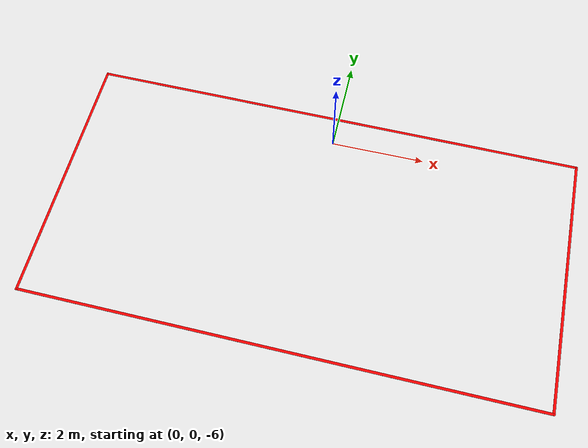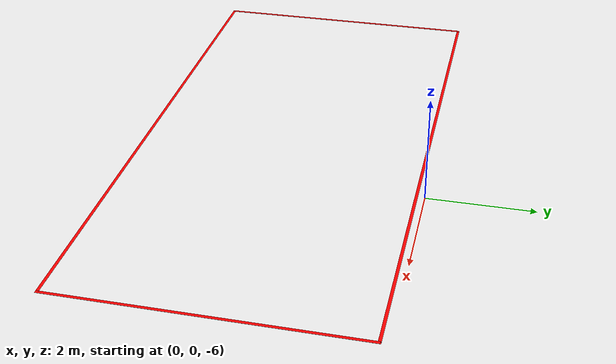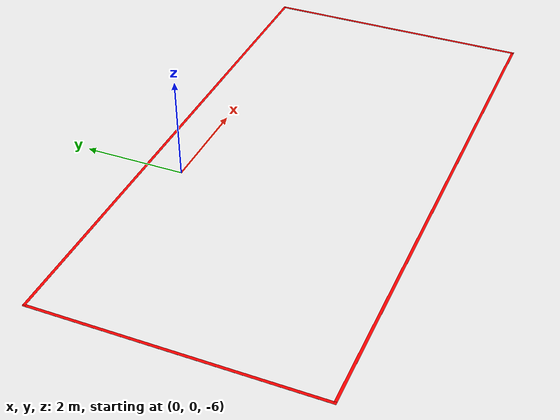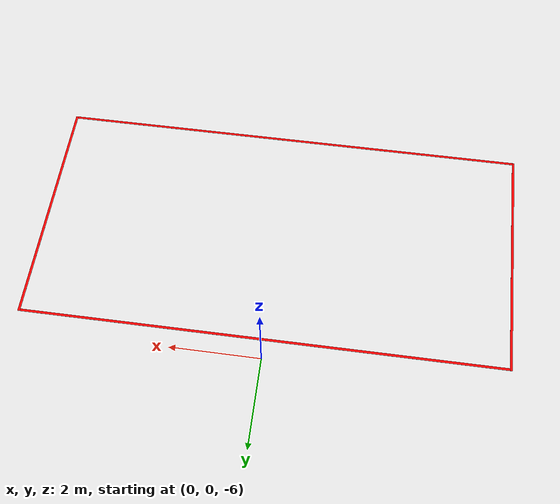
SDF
<?xml version='1.0' encoding='UTF-8'?>
<sdf version="1.6">
  <model name="line_rectangle">
    <static>true</static>
    <link name="rectangle_link">

    <visual name="line_1">
      <cast_shadows>false</cast_shadows>
      <pose>0 0 -5 0 0 0</pose>
      <geometry>
        <box>
          <size>10 0.05 .001</size>
        </box>
      </geometry>
      <material>
        <ambient>1 0 0 1</ambient>
        <diffuse>1 0 0 1</diffuse>
        <specular>0.1 0.1 0.1 1</specular>
      </material>
    </visual>

    <visual name="line_2">
      <cast_shadows>false</cast_shadows>
      <pose>5 -2.5 -5 0 0 0</pose>
      <geometry>
        <box>
          <size>0.05 5.05 .001</size>
        </box>
      </geometry>
      <material>
        <ambient>1 0 0 1</ambient>
        <diffuse>1 0 0 1</diffuse>
        <specular>0.1 0.1 0.1 1</specular>
      </material>
    </visual>

    <visual name="line_3">
      <cast_shadows>false</cast_shadows>
      <pose>-5 -2.5 -5 0 0 0</pose>
      <geometry>
        <box>
          <size>0.05 5.05 .001</size>
        </box>
      </geometry>
      <material>
        <ambient>1 0 0 1</ambient>
        <diffuse>1 0 0 1</diffuse>
        <specular>0.1 0.1 0.1 1</specular>
      </material>
    </visual>

    <visual name="line_4">
      <cast_shadows>false</cast_shadows>
      <pose>0 -5 -5 0 0 0</pose>
      <geometry>
        <box>
          <size>10 0.05 .001</size>
        </box>
      </geometry>
      <material>
        <ambient>1 0 0 1</ambient>
        <diffuse>1 0 0 1</diffuse>
        <specular>0.1 0.1 0.1 1</specular>
      </material>
    </visual>

    </link>

  </model>
</sdf>
